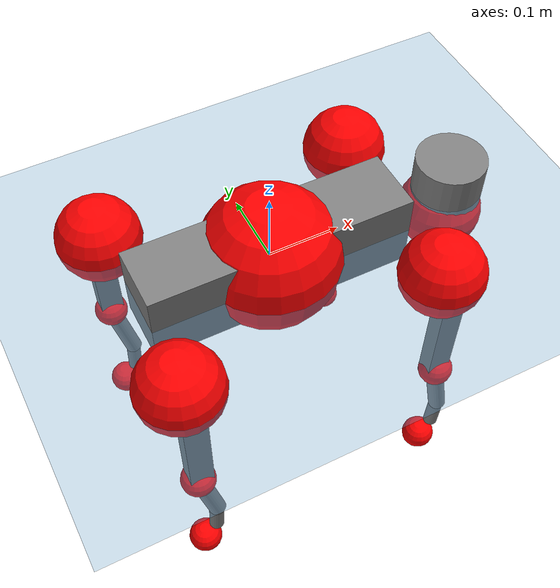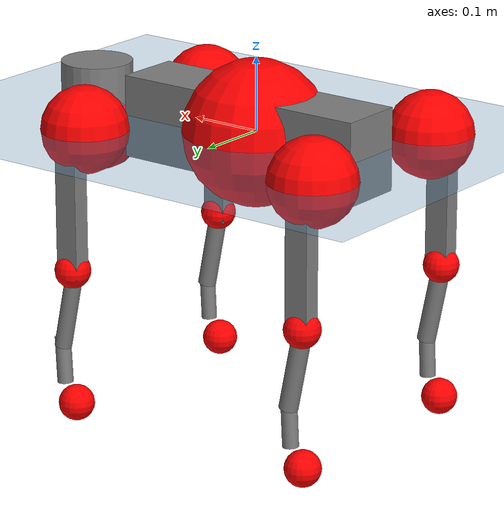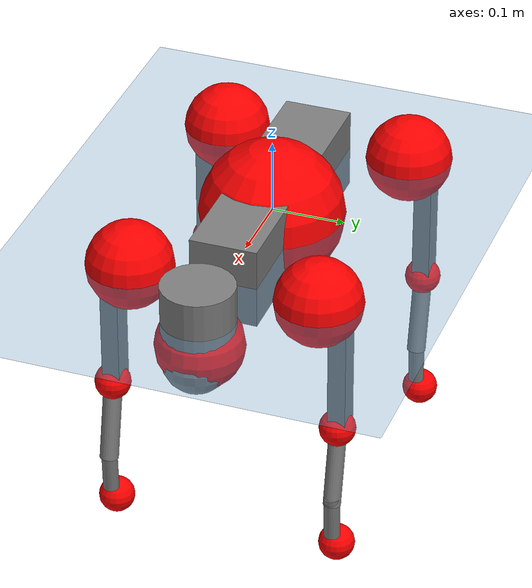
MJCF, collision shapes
<mujoco model="go2">
  <compiler angle="radian" assetdir="assets" balanceinertia="true" inertiafromgeom="false"/>

  <option timestep="0.005" density="1.2" viscosity="2e-05"/>

  <size nkey="1"/>

  <visual>
    <quality shadowsize="8192"/>
    <map shadowclip="0.5"/>
  </visual>

  <default>
    <default class="/">
      <geom contype="0" conaffinity="0" group="1" solref="-1000 -80"/>
      <site size="0.01 0.005 0.005" group="5"/>
      <general forcelimited="true" biastype="affine" gainprm="20" biasprm="0 -20 -0.5"/>
      <default class="go2">
        <joint armature="0.01" damping="0.01" frictionloss="0.2"/>
        <geom condim="1" margin="0.001"/>
        <default class="visual">
          <geom type="mesh" group="2"/>
        </default>
        <default class="collision">
          <geom group="3"/>
          <default class="foot">
            <geom size="0.022 0 0" condim="6" priority="1" friction="0.8 0.02 0.01" solimp="0.015 1 0.022"/>
          </default>
        </default>
        <default class="reward_collision_sphere">
          <geom group="5" rgba="1 0 0 1"/>
        </default>
      </default>
    </default>
  </default>

  <asset>
    <texture type="skybox" colorspace="auto" name="//unnamed_texture_0" builtin="gradient" rgb1="0.95 0.95 0.95" rgb2="0.95 0.95 0.95" width="100" height="600"/>
    <texture type="2d" colorspace="auto" name="texplane" builtin="checker" rgb1="0.345 0.575 0.748" rgb2="0.345 0.575 0.748" markrgb="1 1 1" width="512" height="512"/>
    <material name="MatPlane" class="/" texture="texplane" texuniform="true" texrepeat="2 2" specular="0.9"/>
    <material name="metal" class="/" rgba="0.9 0.95 0.95 1"/>
    <material name="black" class="/" rgba="0 0 0 1"/>
    <material name="white" class="/"/>
    <material name="gray" class="/" rgba="0.671705 0.692426 0.77427 1"/>
    <mesh name="base_0" class="/" file="base_0.obj"/>
    <mesh name="base_1" class="/" file="base_1.obj"/>
    <mesh name="base_2" class="/" file="base_2.obj"/>
    <mesh name="base_3" class="/" file="base_3.obj"/>
    <mesh name="base_4" class="/" file="base_4.obj"/>
    <mesh name="hip_0" class="/" file="hip_0.obj"/>
    <mesh name="hip_1" class="/" file="hip_1.obj"/>
    <mesh name="thigh_0" class="/" file="thigh_0.obj"/>
    <mesh name="thigh_1" class="/" file="thigh_1.obj"/>
    <mesh name="thigh_mirror_0" class="/" file="thigh_mirror_0.obj"/>
    <mesh name="thigh_mirror_1" class="/" file="thigh_mirror_1.obj"/>
    <mesh name="calf_0" class="/" file="calf_0.obj"/>
    <mesh name="calf_1" class="/" file="calf_1.obj"/>
    <mesh name="calf_mirror_0" class="/" file="calf_mirror_0.obj"/>
    <mesh name="calf_mirror_1" class="/" file="calf_mirror_1.obj"/>
    <mesh name="foot" class="/" file="foot.obj"/>
  </asset>

  <worldbody>
    <geom name="floor" class="/" size="100 100 0.125" type="plane" group="0" material="MatPlane"/>
    <light name="toplight_shadow" class="/" pos="0 0 5" dir="0.0990148 0.0990148 -0.990148" type="directional" ambient="0.04 0.04 0.04" diffuse="0.55 0.55 0.55" specular="0.12 0.12 0.12"/>
    <light name="toplight_fill" class="/" pos="0 0 5" dir="0.0990148 0.0990148 -0.990148" type="directional" castshadow="false" ambient="0.04 0.04 0.04" diffuse="0.3 0.3 0.3" specular="0.08 0.08 0.08"/>
    <body name="trunk" childclass="go2" pos="1.49723e-05 -2.13646e-05 -0.00181529" quat="1 -0.000114057 -7.5214e-05 5.32333e-05">
      <inertial pos="0.01766 -0.00274283 -0.00472651" quat="0.000608614 0.711756 -0.000229763 0.702427" mass="6.43711" diaginertia="0.0869112 0.161584 0.0132556"/>
      <joint name="//unnamed_joint_0" type="free" armature="0" damping="0" frictionloss="0"/>
      <geom name="//unnamed_geom_1" class="visual" material="black" mesh="base_0"/>
      <geom name="//unnamed_geom_2" class="visual" material="black" mesh="base_1"/>
      <geom name="//unnamed_geom_3" class="visual" material="black" mesh="base_2"/>
      <geom name="//unnamed_geom_4" class="visual" material="white" mesh="base_3"/>
      <geom name="//unnamed_geom_5" class="visual" material="gray" mesh="base_4"/>
      <geom name="trunk_1" class="collision" size="0.183699 0.0456562 0.0556664" type="box"/>
      <geom name="trunk_2" class="collision" size="0.0488302 0.0439472" pos="0.271582 0 0.00878714" type="cylinder"/>
      <geom name="trunk_3" class="collision" size="0.0459004" pos="0.279206 0 -0.0527228"/>
      <geom name="//unnamed_geom_9" class="reward_collision_sphere" size="0.0976604"/>
      <geom name="//unnamed_geom_10" class="reward_collision_sphere" size="0.0585962" pos="0.266818 0 -0.0395421"/>
      <site name="imu" pos="-0.0377077 0.00312932 0.0502557" size="0.00976604"/>
      <camera name="track" pos="0 -2.19635 0" quat="0.707107 0.707107 0 0" mode="trackcom"/>
      <camera name="ego_camera" pos="0.297311 0 0.0395421" quat="-0.5 -0.5 0.5 0.5"/>
      <body name="FL_hip" pos="0.182877 0.0519244 0.00106781" quat="1 -5.40715e-05 5.5231e-05 4.13163e-05">
        <inertial pos="-0.00246287 0.00201446 -0.000444761" quat="0.495113 0.502756 0.507555 0.494456" mass="0.606146" diaginertia="0.000666503 0.000944547 0.000247363"/>
        <joint name="FL_hip_joint" pos="0 0 0" axis="0.999904 -0.00905004 -0.01046" stiffness="0.00744776" range="-1.05195 1.06771" armature="0.0110751" damping="0.00339195" frictionloss="0.204668"/>
        <geom name="//unnamed_geom_11" class="visual" material="metal" mesh="hip_0"/>
        <geom name="//unnamed_geom_12" class="visual" material="gray" mesh="hip_1"/>
        <geom name="//unnamed_geom_13" class="collision" size="0.0449238 0.0195321" pos="0 0.0878542 0" quat="0.707107 0.707107 0 0" type="cylinder"/>
        <geom name="//unnamed_geom_14" class="reward_collision_sphere" size="0.0585962" pos="0 0.0768724 0"/>
        <body name="FL_thigh" pos="-4.10594e-05 0.106756 0.00230846" quat="1 0.000592532 -0.000616344 -0.000395945">
          <inertial pos="-0.00378583 -0.0246126 -0.0260157" quat="0.83201 0.0860786 -0.0192327 0.547705" mass="1.09507" diaginertia="0.00453809 0.00936173 0.00046774"/>
          <joint name="FL_thigh_joint" pos="0 0 0" axis="7.47803e-06 0.999996 -0.00284345" range="-1.54878 3.46753" armature="0.00936548" damping="0.0140906" frictionloss="0.169781"/>
          <geom name="//unnamed_geom_15" class="visual" material="metal" mesh="thigh_0"/>
          <geom name="//unnamed_geom_16" class="visual" material="gray" mesh="thigh_1"/>
          <geom name="//unnamed_geom_17" class="collision" size="0.104008 0.0119634 0.0166023" pos="0 0 -0.093583" quat="0.707107 0 0.707107 0" type="box"/>
          <body name="FL_calf" pos="0.001924 -0.0024999 -0.190194" quat="0.999999 0.000121491 0.00073268 0.000972297">
            <inertial pos="0.00713648 -0.000309404 -0.122681" quat="0.714182 0.00104864 -0.00322735 0.699952" mass="0.22094" diaginertia="0.0011586 0.00232413 2.79176e-05"/>
            <joint name="FL_calf_joint" pos="0 0 0" axis="0.000118969 1 1.21327e-05" stiffness="0.00227238" range="-2.75742 -0.842722" armature="0.0100711" damping="0" frictionloss="0.209532"/>
            <geom name="//unnamed_geom_18" class="visual" material="gray" mesh="calf_0"/>
            <geom name="//unnamed_geom_19" class="visual" material="black" mesh="calf_1"/>
            <geom name="FL_calf0" class="collision" size="0.0117192 0.0585962" pos="0.00762337 0 -0.0527228" quat="0.994493 0 -0.104807 0" type="cylinder"/>
            <geom name="//unnamed_geom_21" class="collision" size="0.0107426 0.0317396" pos="0.0190584 0 -0.13005" quat="0.999688 0 0.0249974 0" type="cylinder"/>
            <geom name="//unnamed_geom_22" class="visual" pos="0 0 -0.187166" quat="1 0 0 0" material="black" mesh="foot"/>
            <geom name="FL_foot" class="foot" size="0.0176866" pos="-0.00190584 0 -0.187166"/>
            <geom name="//unnamed_geom_24" class="reward_collision_sphere" size="0.0244151"/>
            <geom name="//unnamed_geom_25" class="reward_collision_sphere" size="0.0244151" pos="-0.00190584 0 -0.187166"/>
            <site name="FL_foot" class="foot" pos="-0.00190584 0 -0.187166" size="0.00976604"/>
          </body>
        </body>
      </body>
      <body name="FR_hip" pos="0.183399 -0.0503412 0.00114864" quat="1 3.69537e-05 -4.385e-05 -8.76615e-05">
        <inertial pos="-0.00241779 -0.00195581 -0.000189135" quat="0.498314 0.505553 0.498624 0.497467" mass="0.65072" diaginertia="0.000705826 0.000980225 0.000256387"/>
        <joint name="FR_hip_joint" pos="0 0 0" axis="0.999997 -0.00222741 -0.0011607" stiffness="0.00554314" range="-1.10319 1.03704" armature="0.00851538" damping="0.0171498" frictionloss="0.169714"/>
        <geom name="//unnamed_geom_26" class="visual" pos="0 1.91187e-09 8.20042e-08" quat="4.63268e-05 1 0 0" material="metal" mesh="hip_0"/>
        <geom name="//unnamed_geom_27" class="visual" pos="0 3.09937e-09 -2.02828e-07" quat="4.63268e-05 1 0 0" material="gray" mesh="hip_1"/>
        <geom name="//unnamed_geom_28" class="collision" size="0.0449238 0.0195321" pos="0 -0.0878542 0" quat="0.707107 0.707107 0 0" type="cylinder"/>
        <geom name="//unnamed_geom_29" class="reward_collision_sphere" size="0.0585962" pos="0 -0.0768724 0"/>
        <body name="FR_thigh" pos="0.000295673 -0.10196 -0.00101353" quat="1 -5.70879e-05 -8.91066e-05 0.000362022">
          <inertial pos="-0.00361676 0.0240073 -0.0285924" quat="0.544418 -0.0295337 0.083666 0.834109" mass="1.00851" diaginertia="0.00454544 0.00923948 0.00044932"/>
          <joint name="FR_thigh_joint" pos="0 0 0" axis="-0.0039715 -0.999935 0.0106741" stiffness="0.00257158" range="-3.43759 1.60298" armature="0.00987235" damping="0" frictionloss="0.220084"/>
          <geom name="//unnamed_geom_30" class="visual" material="metal" mesh="thigh_mirror_0"/>
          <geom name="//unnamed_geom_31" class="visual" material="gray" mesh="thigh_mirror_1"/>
          <geom name="//unnamed_geom_32" class="collision" size="0.104008 0.0119634 0.0166023" pos="0 0 -0.093583" quat="0.707107 0 0.707107 0" type="box"/>
          <body name="FR_calf" pos="0.00242299 -0.00271401 -0.187287" quat="1 -4.66117e-05 1.84591e-05 -0.000197336">
            <inertial pos="0.00626375 0.000225791 -0.121748" quat="0.706861 -0.00678688 0.00262741 0.707315" mass="0.226312" diaginertia="0.0011284 0.00226302 2.79236e-05"/>
            <joint name="FR_calf_joint" pos="0 0 0" axis="-0.00419962 -0.99999 -0.0018035" range="0.813717 2.75469" armature="0.010161" damping="0.00627266" frictionloss="0.169037"/>
            <geom name="//unnamed_geom_33" class="visual" material="gray" mesh="calf_mirror_0"/>
            <geom name="//unnamed_geom_34" class="visual" material="black" mesh="calf_mirror_1"/>
            <geom name="FR_calf0" class="collision" size="0.0126959 0.0585962" pos="0.00952921 0 -0.0527228" quat="0.995004 0 -0.0998334 0" type="cylinder"/>
            <geom name="//unnamed_geom_36" class="collision" size="0.0107426 0.0317396" pos="0.0190584 0 -0.13005" quat="0.999688 0 0.0249974 0" type="cylinder"/>
            <geom name="//unnamed_geom_37" class="visual" pos="0 0 -0.187166" quat="1 0 0 0" material="black" mesh="foot"/>
            <geom name="FR_foot" class="foot" size="0.0204948" pos="-0.00190584 0 -0.187166"/>
            <geom name="//unnamed_geom_39" class="reward_collision_sphere" size="0.0244151"/>
            <geom name="//unnamed_geom_40" class="reward_collision_sphere" size="0.0244151" pos="-0.00190584 0 -0.187166"/>
            <site name="FR_foot" class="foot" pos="-0.00190584 0 -0.187166" size="0.00976604"/>
          </body>
        </body>
      </body>
      <body name="RL_hip" pos="-0.186916 0.051703 0.000311564" quat="1 -1.81658e-05 -6.59332e-06 -1.23293e-05">
        <inertial pos="0.00516913 0.00517655 0.000346377" quat="0.509417 0.493701 0.49876 0.497989" mass="0.627747" diaginertia="0.000677925 0.000953054 0.000235573"/>
        <joint name="RL_hip_joint" pos="0 0 0" axis="-0.999947 0.00534653 -0.00878685" stiffness="0.0037416" range="-1.05869 0.995607" armature="0.00834353" damping="6.37486e-05" frictionloss="0.189988"/>
        <geom name="//unnamed_geom_41" class="visual" pos="-6.46458e-10 0 -1.26721e-07" quat="4.63268e-05 0 1 0" material="metal" mesh="hip_0"/>
        <geom name="//unnamed_geom_42" class="visual" pos="-1.04799e-09 0 -1.12383e-07" quat="4.63268e-05 0 1 0" material="gray" mesh="hip_1"/>
        <geom name="//unnamed_geom_43" class="collision" size="0.0449238 0.0195321" pos="0 0.0878542 0" quat="0.707107 0.707107 0 0" type="cylinder"/>
        <geom name="//unnamed_geom_44" class="reward_collision_sphere" size="0.0585962" pos="0 0.0768724 0"/>
        <body name="RL_thigh" pos="-0.00140473 0.101599 0.000542632" quat="1 -2.6505e-06 -4.67187e-08 2.13221e-06">
          <inertial pos="-0.00327227 -0.0218155 -0.0281944" quat="0.829738 0.0853736 -0.0198975 0.551227" mass="1.07505" diaginertia="0.00467019 0.00918946 0.000455614"/>
          <joint name="RL_thigh_joint" pos="0 0 0" axis="0.00838434 0.999946 -0.0061407" stiffness="0.010321" range="-0.518795 4.549" armature="0.00948723" damping="0.000430759" frictionloss="0.19006"/>
          <geom name="//unnamed_geom_45" class="visual" material="metal" mesh="thigh_0"/>
          <geom name="//unnamed_geom_46" class="visual" material="gray" mesh="thigh_1"/>
          <geom name="//unnamed_geom_47" class="collision" size="0.104008 0.0119634 0.0166023" pos="0 0 -0.093583" quat="0.707107 0 0.707107 0" type="box"/>
          <body name="RL_calf" pos="-0.00111417 -0.00125991 -0.186985" quat="1 -0.000143064 -3.12861e-07 0.000193772">
            <inertial pos="0.00586494 -0.000647673 -0.124581" quat="0.713421 -0.00908104 0.00138439 0.700675" mass="0.223649" diaginertia="0.00117141 0.0023163 2.68129e-05"/>
            <joint name="RL_calf_joint" pos="0 0 0" axis="0.00455426 0.999987 -0.00214766" range="-2.71622 -0.836896" armature="0.00877338" damping="0.00416617" frictionloss="0.210984"/>
            <geom name="//unnamed_geom_48" class="visual" material="gray" mesh="calf_0"/>
            <geom name="//unnamed_geom_49" class="visual" material="black" mesh="calf_1"/>
            <geom name="RL_calf0" class="collision" size="0.0126959 0.0585962" pos="0.00952921 0 -0.0527228" quat="0.995004 0 -0.0998334 0" type="cylinder"/>
            <geom name="//unnamed_geom_51" class="collision" size="0.0107426 0.0317396" pos="0.0190584 0 -0.13005" quat="0.999688 0 0.0249974 0" type="cylinder"/>
            <geom name="//unnamed_geom_52" class="visual" pos="0 0 -0.187166" quat="1 0 0 0" material="black" mesh="foot"/>
            <geom name="RL_foot" class="foot" size="0.0189159" pos="-0.00190584 0 -0.187166"/>
            <geom name="//unnamed_geom_54" class="reward_collision_sphere" size="0.0244151"/>
            <geom name="//unnamed_geom_55" class="reward_collision_sphere" size="0.0244151" pos="-0.00190584 0 -0.187166"/>
            <site name="RL_foot" class="foot" pos="-0.00190584 0 -0.187166" size="0.00976604"/>
          </body>
        </body>
      </body>
      <body name="RR_hip" pos="-0.184318 -0.0545701 -0.000381791" quat="0.999999 8.60049e-05 -0.000346461 -0.00107434">
        <inertial pos="0.00240661 -0.00234465 0.00247171" quat="0.496667 0.495525 0.498266 0.509419" mass="0.626187" diaginertia="0.000687752 0.000947665 0.000241385"/>
        <joint name="RR_hip_joint" pos="0 0 0" axis="-0.999998 -0.00173348 0.000316018" range="-1.09483 1.0998" armature="0.00978264" damping="0" frictionloss="0.192159"/>
        <geom name="//unnamed_geom_56" class="visual" pos="6.51487e-10 1.91187e-09 -2.08725e-07" quat="2.14617e-09 4.63268e-05 4.63268e-05 -1" material="metal" mesh="hip_0"/>
        <geom name="//unnamed_geom_57" class="visual" pos="1.03555e-09 3.09937e-09 9.04445e-08" quat="2.14617e-09 4.63268e-05 4.63268e-05 -1" material="gray" mesh="hip_1"/>
        <geom name="//unnamed_geom_58" class="collision" size="0.0449238 0.0195321" pos="0 -0.0878542 0" quat="0.707107 0.707107 0 0" type="cylinder"/>
        <geom name="//unnamed_geom_59" class="reward_collision_sphere" size="0.0585962" pos="0 -0.0768724 0"/>
        <body name="RR_thigh" pos="-0.000420474 -0.106027 0.00173336" quat="1 0.00016192 -3.09309e-05 -5.47097e-05">
          <inertial pos="-0.00156327 0.0255813 -0.0297699" quat="0.55162 -0.0197026 0.0851731 0.829502" mass="1.00309" diaginertia="0.0043799 0.00908923 0.000439477"/>
          <joint name="RR_thigh_joint" pos="0 0 0" axis="-0.00839386 -0.999832 0.0163047" range="-4.52867 0.51986" armature="0.00985705" damping="0.0172616" frictionloss="0.192289"/>
          <geom name="//unnamed_geom_60" class="visual" material="metal" mesh="thigh_mirror_0"/>
          <geom name="//unnamed_geom_61" class="visual" material="gray" mesh="thigh_mirror_1"/>
          <geom name="//unnamed_geom_62" class="collision" size="0.104008 0.0119634 0.0166023" pos="0 0 -0.093583" quat="0.707107 0 0.707107 0" type="box"/>
          <body name="RR_calf" pos="-0.00217507 0.000631103 -0.188945" quat="1 -7.1054e-05 -0.00014993 1.47901e-05">
            <inertial pos="0.00603582 0.00091358 -0.123798" quat="0.695752 0.00054953 -0.00182605 0.71828" mass="0.224242" diaginertia="0.00115957 0.00241413 2.80959e-05"/>
            <joint name="RR_calf_joint" pos="0 0 0" axis="0.00341777 -0.999992 -0.0022137" stiffness="0.00894354" range="0.852338 2.74297" armature="0.00843278" damping="0.00786285" frictionloss="0.195945"/>
            <geom name="//unnamed_geom_63" class="visual" material="gray" mesh="calf_mirror_0"/>
            <geom name="//unnamed_geom_64" class="visual" material="black" mesh="calf_mirror_1"/>
            <geom name="RR_calf0" class="collision" size="0.0126959 0.0585962" pos="0.00952921 0 -0.0527228" quat="0.995004 0 -0.0998334 0" type="cylinder"/>
            <geom name="//unnamed_geom_66" class="collision" size="0.0107426 0.0317396" pos="0.0190584 0 -0.13005" quat="0.999688 0 0.0249974 0" type="cylinder"/>
            <geom name="//unnamed_geom_67" class="visual" pos="0 0 -0.187166" quat="1 0 0 0" material="black" mesh="foot"/>
            <geom name="RR_foot" class="foot" size="0.0206394" pos="-0.00190584 0 -0.187166"/>
            <geom name="//unnamed_geom_69" class="reward_collision_sphere" size="0.0244151"/>
            <geom name="//unnamed_geom_70" class="reward_collision_sphere" size="0.0244151" pos="-0.00190584 0 -0.187166"/>
            <site name="RR_foot" class="foot" pos="-0.00190584 0 -0.187166" size="0.00976604"/>
          </body>
        </body>
      </body>
    </body>
  </worldbody>

  <contact>
    <pair class="/" geom1="floor" geom2="FL_foot" name="//unnamed_contact_0"/>
    <pair class="/" geom1="floor" geom2="FR_foot" name="//unnamed_contact_1"/>
    <pair class="/" geom1="floor" geom2="RL_foot" name="//unnamed_contact_2"/>
    <pair class="/" geom1="floor" geom2="RR_foot" name="//unnamed_contact_3"/>
  </contact>

  <actuator>
    <general name="FL_hip" class="/" joint="FL_hip_joint" forcerange="-23.8417 23.8417" gainprm="19.0831" biasprm="0 -19.0831 -0.500497"/>
    <general name="FL_thigh" class="/" joint="FL_thigh_joint" forcerange="-22.2122 22.2122" gainprm="19.0831" biasprm="0 -19.0831 -0.500497"/>
    <general name="FL_calf" class="/" joint="FL_calf_joint" forcerange="-45.9365 45.9365" gainprm="19.0831" biasprm="0 -19.0831 -0.500497"/>
    <general name="FR_hip" class="/" joint="FR_hip_joint" forcerange="-21.9322 21.9322" gainprm="19.0831" biasprm="0 -19.0831 -0.500497"/>
    <general name="FR_thigh" class="/" joint="FR_thigh_joint" forcerange="-23.3427 23.3427" gainprm="19.0831" biasprm="0 -19.0831 -0.500497"/>
    <general name="FR_calf" class="/" joint="FR_calf_joint" forcerange="-39.8034 39.8034" gainprm="19.0831" biasprm="0 -19.0831 -0.500497"/>
    <general name="RL_hip" class="/" joint="RL_hip_joint" forcerange="-23.0991 23.0991" gainprm="19.0831" biasprm="0 -19.0831 -0.500497"/>
    <general name="RL_thigh" class="/" joint="RL_thigh_joint" forcerange="-20.9252 20.9252" gainprm="19.0831" biasprm="0 -19.0831 -0.500497"/>
    <general name="RL_calf" class="/" joint="RL_calf_joint" forcerange="-46.1267 46.1267" gainprm="19.0831" biasprm="0 -19.0831 -0.500497"/>
    <general name="RR_hip" class="/" joint="RR_hip_joint" forcerange="-23.6774 23.6774" gainprm="19.0831" biasprm="0 -19.0831 -0.500497"/>
    <general name="RR_thigh" class="/" joint="RR_thigh_joint" forcerange="-20.7777 20.7777" gainprm="19.0831" biasprm="0 -19.0831 -0.500497"/>
    <general name="RR_calf" class="/" joint="RR_calf_joint" forcerange="-48.6848 48.6848" gainprm="19.0831" biasprm="0 -19.0831 -0.500497"/>
  </actuator>

  <sensor>
    <gyro site="imu" name="imu_angular_velocity"/>
    <velocimeter site="imu" name="imu_linear_velocity"/>
    <framelinvel objtype="site" objname="FL_foot" name="FL_foot_global_linear_velocity"/>
    <framelinvel objtype="site" objname="FR_foot" name="FR_foot_global_linear_velocity"/>
    <framelinvel objtype="site" objname="RL_foot" name="RL_foot_global_linear_velocity"/>
    <framelinvel objtype="site" objname="RR_foot" name="RR_foot_global_linear_velocity"/>
  </sensor>

  <keyframe>
    <key name="home" qpos="0 0 0.325 1 0 0 0 0.1 0.8 -1.5 -0.1 -0.8 1.5 -0.1 0.8 -1.5 0.1 -0.8 1.5"/>
  </keyframe>
</mujoco>
